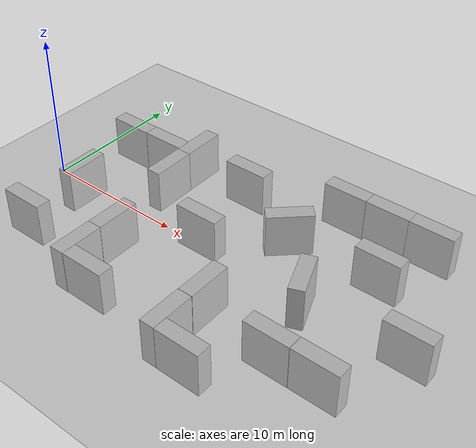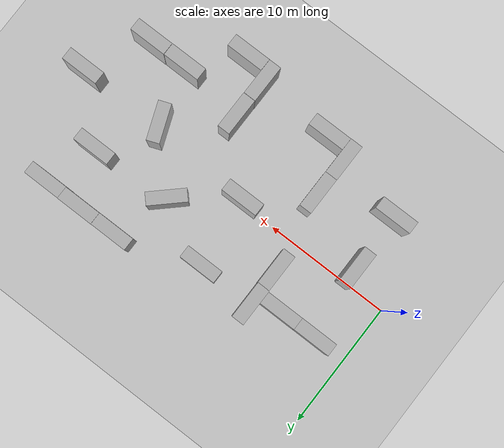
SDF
<sdf version="1.7">
 <world name="default">
  <plugin name="gazebo_octomap" filename="libBuildOctomapPlugin.so"/>
  <light name="sun" type="directional">
   <pose>0 0 10 0 -0 0</pose>
   <diffuse>0.8 0.8 0.8 1</diffuse>
   <specular>0.2 0.2 0.2 1</specular>
   <attenuation>
    <range>1000</range>
    <constant>0.9</constant>
    <linear>0.01</linear>
    <quadratic>0.001</quadratic>
   </attenuation>
   <direction>-0.5 0.1 -0.9</direction>
   <spot><inner_angle>0</inner_angle><outer_angle>0</outer_angle><falloff>0</falloff></spot>
  </light>
  <model name="ground_plane">
   <static>1</static>
   <link name="link">
    <collision name="collision">
     <geometry><plane><normal>0 0 1</normal><size>100 100</size></plane></geometry>
     <surface><friction><ode><mu>100</mu><mu2>50</mu2></ode></friction></surface>
    </collision>
    <visual name="visual">
     <cast_shadows>0</cast_shadows>
     <geometry><plane><normal>0 0 1</normal><size>100 100</size></plane></geometry>
     <material>
      <script><uri>file://media/materials/scripts/gazebo.material</uri><name>Gazebo/Grey</name></script>
     </material>
    </visual>
   </link>
  </model>
  <gravity>0 0 -9.8</gravity>
  <magnetic_field>6e-06 2.3e-05 -4.2e-05</magnetic_field>
  <atmosphere type="adiabatic"/>
  <physics type="ode">
   <max_step_size>0.001</max_step_size>
   <real_time_factor>1</real_time_factor>
   <real_time_update_rate>1000</real_time_update_rate>
  </physics>
  <scene><ambient>0.4 0.4 0.4 1</ambient><background>0.7 0.7 0.7 1</background><shadows>1</shadows></scene>
  <spherical_coordinates>
   <surface_model>EARTH_WGS84</surface_model>
   <latitude_deg>0</latitude_deg>
   <longitude_deg>0</longitude_deg>
   <elevation>0</elevation>
   <heading_deg>0</heading_deg>
  </spherical_coordinates>
  <model name="brick_box_3x1x3">
   <static>1</static>
   <link name="chassis">
    <pose>0 0 1.5 0 -0 0</pose>
    <collision name="collision"><geometry><box><size>3 1 3</size></box></geometry></collision>
    <visual name="visual">
     <geometry><mesh><uri>model://brick_box_3x1x3/meshes/simple_box.dae</uri><scale>3 1 3</scale></mesh></geometry>
     <material>
      <script>
       <uri>model://brick_box_3x1x3/materials/scripts</uri>
       <uri>model://brick_box_3x1x3/materials/textures</uri>
       <name>BrickBox/Diffuse</name>
      </script>
     </material>
    </visual>
   </link>
   <pose>3.50823 -1.13038 0 0 -0 1.5707</pose>
  </model>
  <model name="brick_box_3x1x3_0">
   <static>1</static>
   <link name="chassis">
    <pose>0 0 1.5 0 -0 0</pose>
    <collision name="collision"><geometry><box><size>3 1 3</size></box></geometry></collision>
    <visual name="visual">
     <geometry><mesh><uri>model://brick_box_3x1x3/meshes/simple_box.dae</uri><scale>3 1 3</scale></mesh></geometry>
     <material>
      <script>
       <uri>model://brick_box_3x1x3/materials/scripts</uri>
       <uri>model://brick_box_3x1x3/materials/textures</uri>
       <name>BrickBox/Diffuse</name>
      </script>
     </material>
    </visual>
   </link>
   <pose>7.93161 2.4732 0 0 -0 1.5707</pose>
  </model>
  <model name="brick_box_3x1x3_0_clone">
   <static>1</static>
   <link name="chassis">
    <pose>0 0 1.5 0 -0 0</pose>
    <collision name="collision"><geometry><box><size>3 1 3</size></box></geometry></collision>
    <visual name="visual">
     <geometry><mesh><uri>model://brick_box_3x1x3/meshes/simple_box.dae</uri><scale>3 1 3</scale></mesh></geometry>
     <material>
      <script>
       <uri>model://brick_box_3x1x3/materials/scripts</uri>
       <uri>model://brick_box_3x1x3/materials/textures</uri>
       <name>BrickBox/Diffuse</name>
      </script>
     </material>
    </visual>
   </link>
   <pose>8.92417 -3.64645 0 0 -0 1.5707</pose>
  </model>
  <model name="brick_box_3x1x3_0_clone_0">
   <static>1</static>
   <link name="chassis">
    <pose>0 0 1.5 0 -0 0</pose>
    <collision name="collision"><geometry><box><size>3 1 3</size></box></geometry></collision>
    <visual name="visual">
     <geometry><mesh><uri>model://brick_box_3x1x3/meshes/simple_box.dae</uri><scale>3 1 3</scale></mesh></geometry>
     <material>
      <script>
       <uri>model://brick_box_3x1x3/materials/scripts</uri>
       <uri>model://brick_box_3x1x3/materials/textures</uri>
       <name>BrickBox/Diffuse</name>
      </script>
     </material>
    </visual>
   </link>
   <pose>12.9265 -0.130475 0 0 -0 0</pose>
  </model>
  <model name="brick_box_3x1x3_0_clone_1">
   <static>1</static>
   <link name="chassis">
    <pose>0 0 1.5 0 -0 0</pose>
    <collision name="collision"><geometry><box><size>3 1 3</size></box></geometry></collision>
    <visual name="visual">
     <geometry><mesh><uri>model://brick_box_3x1x3/meshes/simple_box.dae</uri><scale>3 1 3</scale></mesh></geometry>
     <material>
      <script>
       <uri>model://brick_box_3x1x3/materials/scripts</uri>
       <uri>model://brick_box_3x1x3/materials/textures</uri>
       <name>BrickBox/Diffuse</name>
      </script>
     </material>
    </visual>
   </link>
   <pose>17.193 3.1539 0 0 -0 0.754273</pose>
  </model>
  <model name="brick_box_3x1x3_0_clone_2">
   <static>1</static>
   <link name="chassis">
    <pose>0 0 1.5 0 -0 0</pose>
    <collision name="collision"><geometry><box><size>3 1 3</size></box></geometry></collision>
    <visual name="visual">
     <geometry><mesh><uri>model://brick_box_3x1x3/meshes/simple_box.dae</uri><scale>3 1 3</scale></mesh></geometry>
     <material>
      <script>
       <uri>model://brick_box_3x1x3/materials/scripts</uri>
       <uri>model://brick_box_3x1x3/materials/textures</uri>
       <name>BrickBox/Diffuse</name>
      </script>
     </material>
    </visual>
   </link>
   <pose>16.9406 -4.5803 0 0 -0 1.5707</pose>
  </model>
  <model name="brick_box_3x1x3_0_clone_3">
   <static>1</static>
   <link name="chassis">
    <pose>0 0 1.5 0 -0 0</pose>
    <collision name="collision"><geometry><box><size>3 1 3</size></box></geometry></collision>
    <visual name="visual">
     <geometry><mesh><uri>model://brick_box_3x1x3/meshes/simple_box.dae</uri><scale>3 1 3</scale></mesh></geometry>
     <material>
      <script>
       <uri>model://brick_box_3x1x3/materials/scripts</uri>
       <uri>model://brick_box_3x1x3/materials/textures</uri>
       <name>BrickBox/Diffuse</name>
      </script>
     </material>
    </visual>
   </link>
   <pose>7.91017 5.45943 0 0 -0 1.5707</pose>
  </model>
  <model name="brick_box_3x1x3_0_clone_4">
   <static>1</static>
   <link name="chassis">
    <pose>0 0 1.5 0 -0 0</pose>
    <collision name="collision"><geometry><box><size>3 1 3</size></box></geometry></collision>
    <visual name="visual">
     <geometry><mesh><uri>model://brick_box_3x1x3/meshes/simple_box.dae</uri><scale>3 1 3</scale></mesh></geometry>
     <material>
      <script>
       <uri>model://brick_box_3x1x3/materials/scripts</uri>
       <uri>model://brick_box_3x1x3/materials/textures</uri>
       <name>BrickBox/Diffuse</name>
      </script>
     </material>
    </visual>
   </link>
   <pose>8.91082 -6.62179 0 0 -0 1.5707</pose>
  </model>
  <model name="brick_box_3x1x3_0_clone_5">
   <static>1</static>
   <link name="chassis">
    <pose>0 0 1.5 0 -0 0</pose>
    <collision name="collision"><geometry><box><size>3 1 3</size></box></geometry></collision>
    <visual name="visual">
     <geometry><mesh><uri>model://brick_box_3x1x3/meshes/simple_box.dae</uri><scale>3 1 3</scale></mesh></geometry>
     <material>
      <script>
       <uri>model://brick_box_3x1x3/materials/scripts</uri>
       <uri>model://brick_box_3x1x3/materials/textures</uri>
       <name>BrickBox/Diffuse</name>
      </script>
     </material>
    </visual>
   </link>
   <pose>20.9095 -0.726747 0 0 -0 1.93859</pose>
  </model>
  <model name="brick_box_3x1x3_0_clone_6">
   <static>1</static>
   <link name="chassis">
    <pose>0 0 1.5 0 -0 0</pose>
    <collision name="collision"><geometry><box><size>3 1 3</size></box></geometry></collision>
    <visual name="visual">
     <geometry><mesh><uri>model://brick_box_3x1x3/meshes/simple_box.dae</uri><scale>3 1 3</scale></mesh></geometry>
     <material>
      <script>
       <uri>model://brick_box_3x1x3/materials/scripts</uri>
       <uri>model://brick_box_3x1x3/materials/textures</uri>
       <name>BrickBox/Diffuse</name>
      </script>
     </material>
    </visual>
   </link>
   <pose>16.9283 -7.59112 0 0 -0 1.5707</pose>
  </model>
  <model name="brick_box_3x1x3_clone">
   <static>1</static>
   <link name="chassis">
    <pose>0 0 1.5 0 -0 0</pose>
    <collision name="collision"><geometry><box><size>3 1 3</size></box></geometry></collision>
    <visual name="visual">
     <geometry><mesh><uri>model://brick_box_3x1x3/meshes/simple_box.dae</uri><scale>3 1 3</scale></mesh></geometry>
     <material>
      <script>
       <uri>model://brick_box_3x1x3/materials/scripts</uri>
       <uri>model://brick_box_3x1x3/materials/textures</uri>
       <name>BrickBox/Diffuse</name>
      </script>
     </material>
    </visual>
   </link>
   <pose>22.1144 -5.27321 0 0 -0 0</pose>
  </model>
  <model name="brick_box_3x1x3_clone_0">
   <static>1</static>
   <link name="chassis">
    <pose>0 0 1.5 0 -0 0</pose>
    <collision name="collision"><geometry><box><size>3 1 3</size></box></geometry></collision>
    <visual name="visual">
     <geometry><mesh><uri>model://brick_box_3x1x3/meshes/simple_box.dae</uri><scale>3 1 3</scale></mesh></geometry>
     <material>
      <script>
       <uri>model://brick_box_3x1x3/materials/scripts</uri>
       <uri>model://brick_box_3x1x3/materials/textures</uri>
       <name>BrickBox/Diffuse</name>
      </script>
     </material>
    </visual>
   </link>
   <pose>12.3537 5.40714 0 0 -0 0</pose>
  </model>
  <model name="brick_box_3x1x3_clone_1">
   <static>1</static>
   <link name="chassis">
    <pose>0 0 1.5 0 -0 0</pose>
    <collision name="collision"><geometry><box><size>3 1 3</size></box></geometry></collision>
    <visual name="visual">
     <geometry><mesh><uri>model://brick_box_3x1x3/meshes/simple_box.dae</uri><scale>3 1 3</scale></mesh></geometry>
     <material>
      <script>
       <uri>model://brick_box_3x1x3/materials/scripts</uri>
       <uri>model://brick_box_3x1x3/materials/textures</uri>
       <name>BrickBox/Diffuse</name>
      </script>
     </material>
    </visual>
   </link>
   <pose>23.4503 3.43622 0 0 -0 0</pose>
  </model>
  <model name="brick_box_3x1x3_clone_2">
   <static>1</static>
   <link name="chassis">
    <pose>0 0 1.5 0 -0 0</pose>
    <collision name="collision"><geometry><box><size>3 1 3</size></box></geometry></collision>
    <visual name="visual">
     <geometry><mesh><uri>model://brick_box_3x1x3/meshes/simple_box.dae</uri><scale>3 1 3</scale></mesh></geometry>
     <material>
      <script>
       <uri>model://brick_box_3x1x3/materials/scripts</uri>
       <uri>model://brick_box_3x1x3/materials/textures</uri>
       <name>BrickBox/Diffuse</name>
      </script>
     </material>
    </visual>
   </link>
   <pose>27.674 -0.616401 0 0 -0 0</pose>
  </model>
  <model name="brick_box_3x1x3_clone_3">
   <static>1</static>
   <link name="chassis">
    <pose>0 0 1.5 0 -0 0</pose>
    <collision name="collision"><geometry><box><size>3 1 3</size></box></geometry></collision>
    <visual name="visual">
     <geometry><mesh><uri>model://brick_box_3x1x3/meshes/simple_box.dae</uri><scale>3 1 3</scale></mesh></geometry>
     <material>
      <script>
       <uri>model://brick_box_3x1x3/materials/scripts</uri>
       <uri>model://brick_box_3x1x3/materials/textures</uri>
       <name>BrickBox/Diffuse</name>
      </script>
     </material>
    </visual>
   </link>
   <pose>25.1334 -5.26141 0 0 -0 0</pose>
  </model>
  <model name="brick_box_3x1x3_clone_4">
   <static>1</static>
   <link name="chassis">
    <pose>0 0 1.5 0 -0 0</pose>
    <collision name="collision"><geometry><box><size>3 1 3</size></box></geometry></collision>
    <visual name="visual">
     <geometry><mesh><uri>model://brick_box_3x1x3/meshes/simple_box.dae</uri><scale>3 1 3</scale></mesh></geometry>
     <material>
      <script>
       <uri>model://brick_box_3x1x3/materials/scripts</uri>
       <uri>model://brick_box_3x1x3/materials/textures</uri>
       <name>BrickBox/Diffuse</name>
      </script>
     </material>
    </visual>
   </link>
   <pose>21.7192 7.43815 0 0 -0 0</pose>
  </model>
  <model name="brick_box_3x1x3_clone_5">
   <static>1</static>
   <link name="chassis">
    <pose>0 0 1.5 0 -0 0</pose>
    <collision name="collision"><geometry><box><size>3 1 3</size></box></geometry></collision>
    <visual name="visual">
     <geometry><mesh><uri>model://brick_box_3x1x3/meshes/simple_box.dae</uri><scale>3 1 3</scale></mesh></geometry>
     <material>
      <script>
       <uri>model://brick_box_3x1x3/materials/scripts</uri>
       <uri>model://brick_box_3x1x3/materials/textures</uri>
       <name>BrickBox/Diffuse</name>
      </script>
     </material>
    </visual>
   </link>
   <pose>24.6985 7.42529 0 0 -0 0</pose>
  </model>
  <model name="brick_box_3x1x3_clone_6">
   <static>1</static>
   <link name="chassis">
    <pose>0 0 1.5 0 -0 0</pose>
    <collision name="collision"><geometry><box><size>3 1 3</size></box></geometry></collision>
    <visual name="visual">
     <geometry><mesh><uri>model://brick_box_3x1x3/meshes/simple_box.dae</uri><scale>3 1 3</scale></mesh></geometry>
     <material>
      <script>
       <uri>model://brick_box_3x1x3/materials/scripts</uri>
       <uri>model://brick_box_3x1x3/materials/textures</uri>
       <name>BrickBox/Diffuse</name>
      </script>
     </material>
    </visual>
   </link>
   <pose>18.713 7.4276 0 0 -0 0</pose>
  </model>
  <model name="brick_box_3x1x3_clone_7">
   <static>1</static>
   <link name="chassis">
    <pose>0 0 1.5 0 -0 0</pose>
    <collision name="collision"><geometry><box><size>3 1 3</size></box></geometry></collision>
    <visual name="visual">
     <geometry><mesh><uri>model://brick_box_3x1x3/meshes/simple_box.dae</uri><scale>3 1 3</scale></mesh></geometry>
     <material>
      <script>
       <uri>model://brick_box_3x1x3/materials/scripts</uri>
       <uri>model://brick_box_3x1x3/materials/textures</uri>
       <name>BrickBox/Diffuse</name>
      </script>
     </material>
    </visual>
   </link>
   <pose>10.913 -7.60616 0 0 -0 0</pose>
  </model>
  <model name="brick_box_3x1x3_clone_8">
   <static>1</static>
   <link name="chassis">
    <pose>0 0 1.5 0 -0 0</pose>
    <collision name="collision"><geometry><box><size>3 1 3</size></box></geometry></collision>
    <visual name="visual">
     <geometry><mesh><uri>model://brick_box_3x1x3/meshes/simple_box.dae</uri><scale>3 1 3</scale></mesh></geometry>
     <material>
      <script>
       <uri>model://brick_box_3x1x3/materials/scripts</uri>
       <uri>model://brick_box_3x1x3/materials/textures</uri>
       <name>BrickBox/Diffuse</name>
      </script>
     </material>
    </visual>
   </link>
   <pose>3.57955 -5.76541 0 0 -0 0</pose>
  </model>
  <model name="brick_box_3x1x3_clone_9">
   <static>1</static>
   <link name="chassis">
    <pose>0 0 1.5 0 -0 0</pose>
    <collision name="collision"><geometry><box><size>3 1 3</size></box></geometry></collision>
    <visual name="visual">
     <geometry><mesh><uri>model://brick_box_3x1x3/meshes/simple_box.dae</uri><scale>3 1 3</scale></mesh></geometry>
     <material>
      <script>
       <uri>model://brick_box_3x1x3/materials/scripts</uri>
       <uri>model://brick_box_3x1x3/materials/textures</uri>
       <name>BrickBox/Diffuse</name>
      </script>
     </material>
    </visual>
   </link>
   <pose>18.9386 -8.59356 0 0 -0 0</pose>
  </model>
  <model name="brick_box_3x1x3_clone_0_clone">
   <static>1</static>
   <link name="chassis">
    <pose>0 0 1.5 0 -0 0</pose>
    <collision name="collision"><geometry><box><size>3 1 3</size></box></geometry></collision>
    <visual name="visual">
     <geometry><mesh><uri>model://brick_box_3x1x3/meshes/simple_box.dae</uri><scale>3 1 3</scale></mesh></geometry>
     <material>
      <script>
       <uri>model://brick_box_3x1x3/materials/scripts</uri>
       <uri>model://brick_box_3x1x3/materials/textures</uri>
       <name>BrickBox/Diffuse</name>
      </script>
     </material>
    </visual>
   </link>
   <pose>5.9286 4.54256 0 0 -0 0</pose>
  </model>
  <model name="brick_box_3x1x3_clone_0_clone_0">
   <static>1</static>
   <link name="chassis">
    <pose>0 0 1.5 0 -0 0</pose>
    <collision name="collision"><geometry><box><size>3 1 3</size></box></geometry></collision>
    <visual name="visual">
     <geometry><mesh><uri>model://brick_box_3x1x3/meshes/simple_box.dae</uri><scale>3 1 3</scale></mesh></geometry>
     <material>
      <script>
       <uri>model://brick_box_3x1x3/materials/scripts</uri>
       <uri>model://brick_box_3x1x3/materials/textures</uri>
       <name>BrickBox/Diffuse</name>
      </script>
     </material>
    </visual>
   </link>
   <pose>2.93076 4.53583 0 0 -0 0</pose>
  </model>
 </world>
</sdf>
